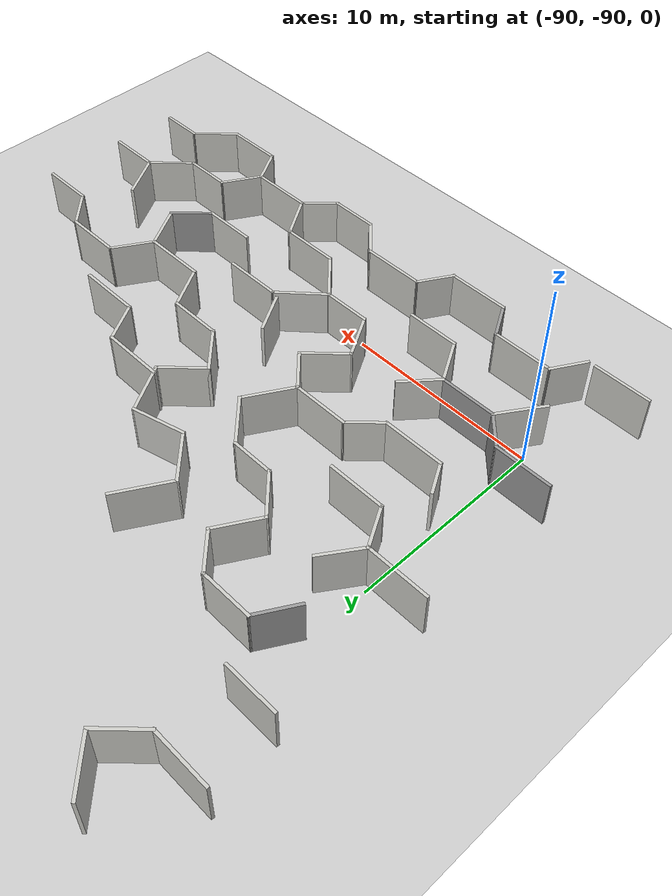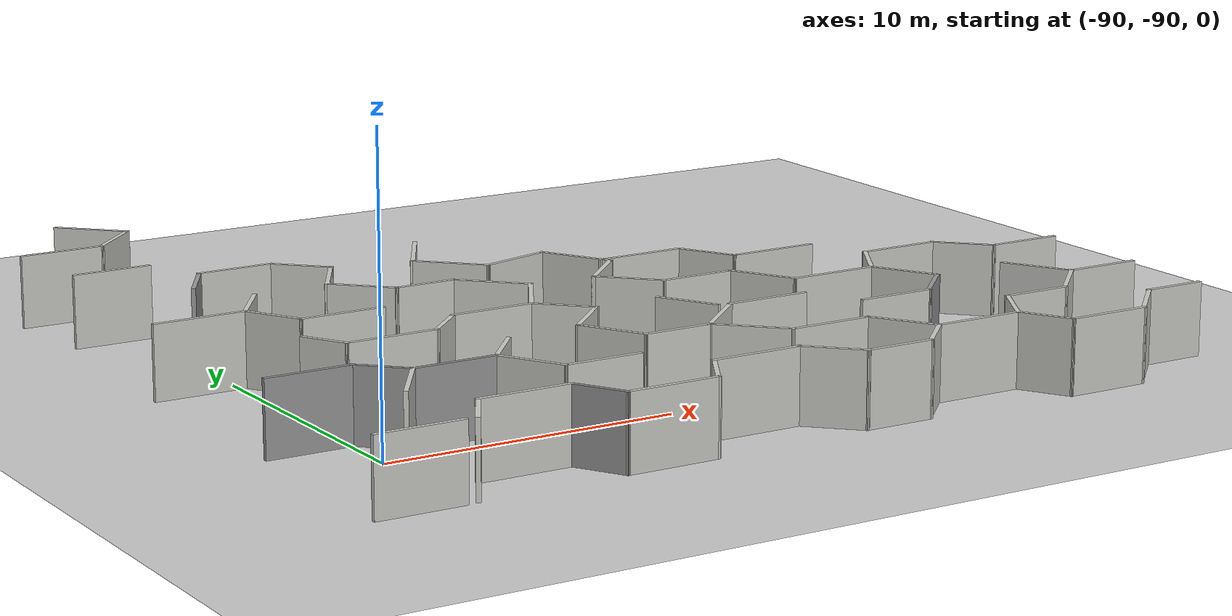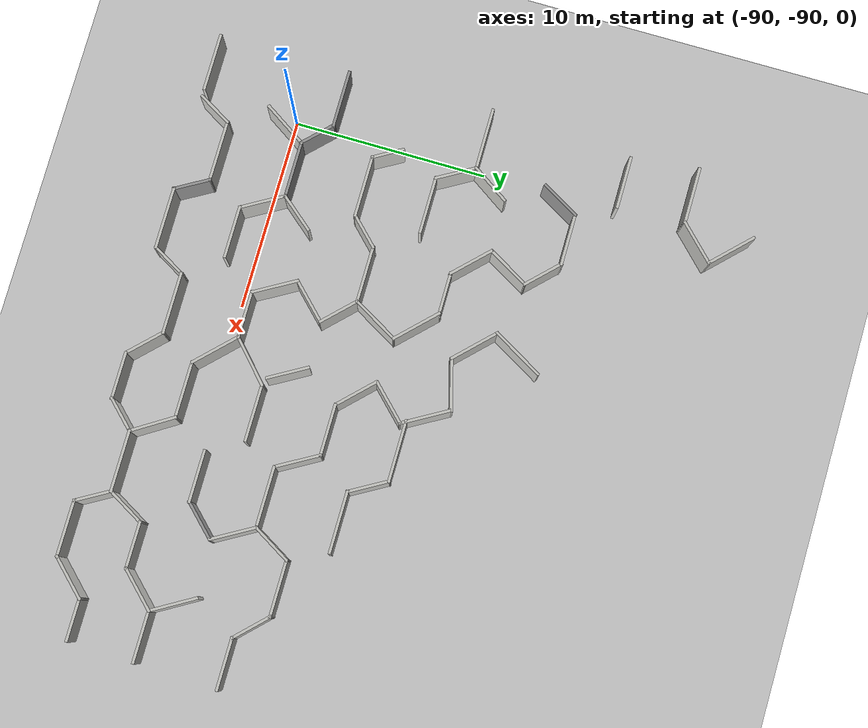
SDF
<sdf version="1.6">
 <world name="default">
  <model name="ground_plane">
   <pose>50 50 0 0 -0 0</pose>
   <static>1</static>
   <link name="link">
    <collision name="collision">
     <geometry><plane><normal>0 0 1</normal><size>100 100</size></plane></geometry>
     <surface><friction><ode><mu>100</mu><mu2>50</mu2></ode></friction></surface>
    </collision>
    <visual name="visual">
     <cast_shadows>0</cast_shadows>
     <geometry><plane><normal>0 0 1</normal><size>100 100</size></plane></geometry>
     <material>
      <script><uri>file://media/materials/scripts/gazebo.material</uri><name>Gazebo/Grey</name></script>
     </material>
    </visual>
   </link>
  </model>
  <model name="maze_1">
   <pose>-54.4916 -79.5001 0 0 -0 0</pose>
   <link name="Wall_100">
    <collision name="Wall_100_Collision">
     <geometry><box><size>2.75 0.15 2.5</size></box></geometry>
     <pose>0 0 1.25 0 -0 0</pose>
    </collision>
    <visual name="Wall_100_Visual">
     <pose>0 0 1.25 0 -0 0</pose>
     <geometry><box><size>2.75 0.15 2.5</size></box></geometry>
     <material>
      <script><uri>file://media/materials/scripts/gazebo.material</uri><name>Gazebo/CeilingTiled</name></script>
      <ambient>1 1 1 1</ambient>
     </material>
     <meta><layer>0</layer></meta>
    </visual>
    <pose>-22.8053 -10.8644 0 0 -0 -0.785398</pose>
   </link>
   <link name="Wall_101">
    <collision name="Wall_101_Collision">
     <geometry><box><size>3 0.15 2.5</size></box></geometry>
     <pose>0 0 1.25 0 -0 0</pose>
    </collision>
    <visual name="Wall_101_Visual">
     <pose>0 0 1.25 0 -0 0</pose>
     <geometry><box><size>3 0.15 2.5</size></box></geometry>
     <material>
      <script><uri>file://media/materials/scripts/gazebo.material</uri><name>Gazebo/CeilingTiled</name></script>
      <ambient>1 1 1 1</ambient>
     </material>
     <meta><layer>0</layer></meta>
    </visual>
    <pose>-20.4611 -11.7836 0 0 -0 0</pose>
   </link>
   <link name="Wall_102">
    <collision name="Wall_102_Collision">
     <geometry><box><size>2.50433 0.15 2.5</size></box></geometry>
     <pose>0 0 1.25 0 -0 0</pose>
    </collision>
    <visual name="Wall_102_Visual">
     <pose>0 0 1.25 0 -0 0</pose>
     <geometry><box><size>2.50433 0.15 2.5</size></box></geometry>
     <material>
      <script><uri>file://media/materials/scripts/gazebo.material</uri><name>Gazebo/CeilingTiled</name></script>
      <ambient>1 1 1 1</ambient>
     </material>
     <meta><layer>0</layer></meta>
    </visual>
    <pose>-18.4056 -12.7777 0 0 -0 -1.00558</pose>
   </link>
   <link name="Wall_104">
    <collision name="Wall_104_Collision">
     <geometry><box><size>3 0.15 2.5</size></box></geometry>
     <pose>0 0 1.25 0 -0 0</pose>
    </collision>
    <visual name="Wall_104_Visual">
     <pose>0 0 1.25 0 -0 0</pose>
     <geometry><box><size>3 0.15 2.5</size></box></geometry>
     <material>
      <script><uri>file://media/materials/scripts/gazebo.material</uri><name>Gazebo/CeilingTiled</name></script>
      <ambient>1 1 1 1</ambient>
     </material>
     <meta><layer>0</layer></meta>
    </visual>
    <pose>-20.321 -8.13238 0 0 -0 3.14159</pose>
   </link>
   <link name="Wall_105">
    <collision name="Wall_105_Collision">
     <geometry><box><size>2.83342 0.15 2.5</size></box></geometry>
     <pose>0 0 1.25 0 -0 0</pose>
    </collision>
    <visual name="Wall_105_Visual">
     <pose>0 0 1.25 0 -0 0</pose>
     <geometry><box><size>2.83342 0.15 2.5</size></box></geometry>
     <material>
      <script><uri>file://media/materials/scripts/gazebo.material</uri><name>Gazebo/CeilingTiled</name></script>
      <ambient>1 1 1 1</ambient>
     </material>
     <meta><layer>0</layer></meta>
    </visual>
    <pose>-22.7353 -9.03876 0 0 -0 -2.39989</pose>
   </link>
   <link name="Wall_107">
    <collision name="Wall_107_Collision">
     <geometry><box><size>2.25 0.15 2.5</size></box></geometry>
     <pose>0 0 1.25 0 -0 0</pose>
    </collision>
    <visual name="Wall_107_Visual">
     <pose>0 0 1.25 0 -0 0</pose>
     <geometry><box><size>2.25 0.15 2.5</size></box></geometry>
     <material>
      <script><uri>file://media/materials/scripts/gazebo.material</uri><name>Gazebo/CeilingTiled</name></script>
      <ambient>1 1 1 1</ambient>
     </material>
     <meta><layer>0</layer></meta>
    </visual>
    <pose>-22.6837 -7.08881 0 0 -0 -1.0472</pose>
   </link>
   <link name="Wall_109">
    <collision name="Wall_109_Collision">
     <geometry><box><size>2.75 0.15 2.5</size></box></geometry>
     <pose>0 0 1.25 0 -0 0</pose>
    </collision>
    <visual name="Wall_109_Visual">
     <pose>0 0 1.25 0 -0 0</pose>
     <geometry><box><size>2.75 0.15 2.5</size></box></geometry>
     <material>
      <script><uri>file://media/materials/scripts/gazebo.material</uri><name>Gazebo/CeilingTiled</name></script>
      <ambient>1 1 1 1</ambient>
     </material>
     <meta><layer>0</layer></meta>
    </visual>
    <pose>-16.5382 -9.92253 0 0 -0 0</pose>
   </link>
   <link name="Wall_110">
    <collision name="Wall_110_Collision">
     <geometry><box><size>2.25 0.15 2.5</size></box></geometry>
     <pose>0 0 1.25 0 -0 0</pose>
    </collision>
    <visual name="Wall_110_Visual">
     <pose>0 0 1.25 0 -0 0</pose>
     <geometry><box><size>2.25 0.15 2.5</size></box></geometry>
     <material>
      <script><uri>file://media/materials/scripts/gazebo.material</uri><name>Gazebo/Grey</name></script>
      <ambient>1 1 1 1</ambient>
     </material>
     <meta><layer>0</layer></meta>
    </visual>
    <pose>-14.4957 -9.18007 0 0 -0 0.785398</pose>
   </link>
   <link name="Wall_111">
    <collision name="Wall_111_Collision">
     <geometry><box><size>2.5 0.15 2.5</size></box></geometry>
     <pose>0 0 1.25 0 -0 0</pose>
    </collision>
    <visual name="Wall_111_Visual">
     <pose>0 0 1.25 0 -0 0</pose>
     <geometry><box><size>2.5 0.15 2.5</size></box></geometry>
     <material>
      <script><uri>file://media/materials/scripts/gazebo.material</uri><name>Gazebo/CeilingTiled</name></script>
      <ambient>1 1 1 1</ambient>
     </material>
     <meta><layer>0</layer></meta>
    </visual>
    <pose>-14.3408 -7.42003 0 0 -0 2.0944</pose>
   </link>
   <link name="Wall_112">
    <collision name="Wall_112_Collision">
     <geometry><box><size>3.25 0.15 2.5</size></box></geometry>
     <pose>0 0 1.25 0 -0 0</pose>
    </collision>
    <visual name="Wall_112_Visual">
     <pose>0 0 1.25 0 -0 0</pose>
     <geometry><box><size>3.25 0.15 2.5</size></box></geometry>
     <material>
      <script><uri>file://media/materials/scripts/gazebo.material</uri><name>Gazebo/CeilingTiled</name></script>
      <ambient>1 1 1 1</ambient>
     </material>
     <meta><layer>0</layer></meta>
    </visual>
    <pose>-16.4783 -6.40245 0 0 -0 3.14159</pose>
   </link>
   <link name="Wall_113">
    <collision name="Wall_113_Collision">
     <geometry><box><size>2.5 0.15 2.5</size></box></geometry>
     <pose>0 0 1.25 0 -0 0</pose>
    </collision>
    <visual name="Wall_113_Visual">
     <pose>0 0 1.25 0 -0 0</pose>
     <geometry><box><size>2.5 0.15 2.5</size></box></geometry>
     <material>
      <script><uri>file://media/materials/scripts/gazebo.material</uri><name>Gazebo/CeilingTiled</name></script>
      <ambient>1 1 1 1</ambient>
     </material>
     <meta><layer>0</layer></meta>
    </visual>
    <pose>-18.6158 -5.38487 0 0 -0 2.0944</pose>
   </link>
   <link name="Wall_114">
    <collision name="Wall_114_Collision">
     <geometry><box><size>2.75 0.15 2.5</size></box></geometry>
     <pose>0 0 1.25 0 -0 0</pose>
    </collision>
    <visual name="Wall_114_Visual">
     <pose>0 0 1.25 0 -0 0</pose>
     <geometry><box><size>2.75 0.15 2.5</size></box></geometry>
     <material>
      <script><uri>file://media/materials/scripts/gazebo.material</uri><name>Gazebo/CeilingTiled</name></script>
      <ambient>1 1 1 1</ambient>
     </material>
     <meta><layer>0</layer></meta>
    </visual>
    <pose>-20.5033 -4.36729 0 0 -0 3.14159</pose>
   </link>
   <link name="Wall_115">
    <collision name="Wall_115_Collision">
     <geometry><box><size>2.5 0.15 2.5</size></box></geometry>
     <pose>0 0 1.25 0 -0 0</pose>
    </collision>
    <visual name="Wall_115_Visual">
     <pose>0 0 1.25 0 -0 0</pose>
     <geometry><box><size>2.5 0.15 2.5</size></box></geometry>
     <material>
      <script><uri>file://media/materials/scripts/gazebo.material</uri><name>Gazebo/CeilingTiled</name></script>
      <ambient>1 1 1 1</ambient>
     </material>
     <meta><layer>0</layer></meta>
    </visual>
    <pose>-22.6341 -3.53644 0 0 -0 2.35619</pose>
   </link>
   <link name="Wall_116">
    <collision name="Wall_116_Collision">
     <geometry><box><size>2.5 0.15 2.5</size></box></geometry>
     <pose>0 0 1.25 0 -0 0</pose>
    </collision>
    <visual name="Wall_116_Visual">
     <pose>0 0 1.25 0 -0 0</pose>
     <geometry><box><size>2.5 0.15 2.5</size></box></geometry>
     <material>
      <script><uri>file://media/materials/scripts/gazebo.material</uri><name>Gazebo/CeilingTiled</name></script>
      <ambient>1 1 1 1</ambient>
     </material>
     <meta><layer>0</layer></meta>
    </visual>
    <pose>-22.6341 -1.87474 0 0 -0 0.785398</pose>
   </link>
   <link name="Wall_117">
    <collision name="Wall_117_Collision">
     <geometry><box><size>2.75 0.15 2.5</size></box></geometry>
     <pose>0 0 1.25 0 -0 0</pose>
    </collision>
    <visual name="Wall_117_Visual">
     <pose>0 0 1.25 0 -0 0</pose>
     <geometry><box><size>2.75 0.15 2.5</size></box></geometry>
     <material>
      <script><uri>file://media/materials/scripts/gazebo.material</uri><name>Gazebo/CeilingTiled</name></script>
      <ambient>1 1 1 1</ambient>
     </material>
     <meta><layer>0</layer></meta>
    </visual>
    <pose>-22.4533 0.081949 0 0 -0 2.0944</pose>
   </link>
   <link name="Wall_118">
    <collision name="Wall_118_Collision">
     <geometry><box><size>2.75 0.15 2.5</size></box></geometry>
     <pose>0 0 1.25 0 -0 0</pose>
    </collision>
    <visual name="Wall_118_Visual">
     <pose>0 0 1.25 0 -0 0</pose>
     <geometry><box><size>2.75 0.15 2.5</size></box></geometry>
     <material>
      <script><uri>file://media/materials/scripts/gazebo.material</uri><name>Gazebo/CeilingTiled</name></script>
      <ambient>1 1 1 1</ambient>
     </material>
     <meta><layer>0</layer></meta>
    </visual>
    <pose>-24.359 0.871317 0 0 -0 -2.87979</pose>
   </link>
   <link name="Wall_119">
    <collision name="Wall_119_Collision">
     <geometry><box><size>2.75 0.15 2.5</size></box></geometry>
     <pose>0 0 1.25 0 -0 0</pose>
    </collision>
    <visual name="Wall_119_Visual">
     <pose>0 0 1.25 0 -0 0</pose>
     <geometry><box><size>2.75 0.15 2.5</size></box></geometry>
     <material>
      <script><uri>file://media/materials/scripts/gazebo.material</uri><name>Gazebo/CeilingTiled</name></script>
      <ambient>1 1 1 1</ambient>
     </material>
     <meta><layer>0</layer></meta>
    </visual>
    <pose>-26.5339 1.45409 0 0 -0 2.35619</pose>
   </link>
   <link name="Wall_120">
    <collision name="Wall_120_Collision">
     <geometry><box><size>3 0.15 2.5</size></box></geometry>
     <pose>0 0 1.25 0 -0 0</pose>
    </collision>
    <visual name="Wall_120_Visual">
     <pose>0 0 1.25 0 -0 0</pose>
     <geometry><box><size>3 0.15 2.5</size></box></geometry>
     <material>
      <script><uri>file://media/materials/scripts/gazebo.material</uri><name>Gazebo/CeilingTiled</name></script>
      <ambient>1 1 1 1</ambient>
     </material>
     <meta><layer>0</layer></meta>
    </visual>
    <pose>-26.7407 3.60742 0 0 -0 1.0472</pose>
   </link>
   <link name="Wall_122">
    <collision name="Wall_122_Collision">
     <geometry><box><size>3.25 0.15 2.5</size></box></geometry>
     <pose>0 0 1.25 0 -0 0</pose>
    </collision>
    <visual name="Wall_122_Visual">
     <pose>0 0 1.25 0 -0 0</pose>
     <geometry><box><size>3.25 0.15 2.5</size></box></geometry>
     <material>
      <script><uri>file://media/materials/scripts/gazebo.material</uri><name>Gazebo/CeilingTiled</name></script>
      <ambient>1 1 1 1</ambient>
     </material>
     <meta><layer>0</layer></meta>
    </visual>
    <pose>-16.2961 -2.59917 0 0 -0 3.14159</pose>
   </link>
   <link name="Wall_123">
    <collision name="Wall_123_Collision">
     <geometry><box><size>2.25 0.15 2.5</size></box></geometry>
     <pose>0 0 1.25 0 -0 0</pose>
    </collision>
    <visual name="Wall_123_Visual">
     <pose>0 0 1.25 0 -0 0</pose>
     <geometry><box><size>2.25 0.15 2.5</size></box></geometry>
     <material>
      <script><uri>file://media/materials/scripts/gazebo.material</uri><name>Gazebo/CeilingTiled</name></script>
      <ambient>1 1 1 1</ambient>
     </material>
     <meta><layer>0</layer></meta>
    </visual>
    <pose>-18.3711 -1.68985 0 0 -0 2.0944</pose>
   </link>
   <link name="Wall_124">
    <collision name="Wall_124_Collision">
     <geometry><box><size>3.25 0.15 2.5</size></box></geometry>
     <pose>0 0 1.25 0 -0 0</pose>
    </collision>
    <visual name="Wall_124_Visual">
     <pose>0 0 1.25 0 -0 0</pose>
     <geometry><box><size>3.25 0.15 2.5</size></box></geometry>
     <material>
      <script><uri>file://media/materials/scripts/gazebo.material</uri><name>Gazebo/CeilingTiled</name></script>
      <ambient>1 1 1 1</ambient>
     </material>
     <meta><layer>0</layer></meta>
    </visual>
    <pose>-20.4461 -0.780521 0 0 -0 3.14159</pose>
   </link>
   <link name="Wall_130">
    <collision name="Wall_130_Collision">
     <geometry><box><size>2.75 0.15 2.5</size></box></geometry>
     <pose>0 0 1.25 0 -0 0</pose>
    </collision>
    <visual name="Wall_130_Visual">
     <pose>0 0 1.25 0 -0 0</pose>
     <geometry><box><size>2.75 0.15 2.5</size></box></geometry>
     <material>
      <script><uri>file://media/materials/scripts/gazebo.material</uri><name>Gazebo/CeilingTiled</name></script>
      <ambient>1 1 1 1</ambient>
     </material>
     <meta><layer>0</layer></meta>
    </visual>
    <pose>-8.17192 -6.00916 0 0 -0 3.14159</pose>
   </link>
   <link name="Wall_131">
    <collision name="Wall_131_Collision">
     <geometry><box><size>2.25 0.15 2.5</size></box></geometry>
     <pose>0 0 1.25 0 -0 0</pose>
    </collision>
    <visual name="Wall_131_Visual">
     <pose>0 0 1.25 0 -0 0</pose>
     <geometry><box><size>2.25 0.15 2.5</size></box></geometry>
     <material>
      <script><uri>file://media/materials/scripts/gazebo.material</uri><name>Gazebo/CeilingTiled</name></script>
      <ambient>1 1 1 1</ambient>
     </material>
     <meta><layer>0</layer></meta>
    </visual>
    <pose>-10.2144 -5.2667 0 0 -0 2.35619</pose>
   </link>
   <link name="Wall_132">
    <collision name="Wall_132_Collision">
     <geometry><box><size>3 0.15 2.5</size></box></geometry>
     <pose>0 0 1.25 0 -0 0</pose>
    </collision>
    <visual name="Wall_132_Visual">
     <pose>0 0 1.25 0 -0 0</pose>
     <geometry><box><size>3 0.15 2.5</size></box></geometry>
     <material>
      <script><uri>file://media/materials/scripts/gazebo.material</uri><name>Gazebo/CeilingTiled</name></script>
      <ambient>1 1 1 1</ambient>
     </material>
     <meta><layer>0</layer></meta>
    </visual>
    <pose>-12.3818 -4.52424 0 0 -0 3.14159</pose>
   </link>
   <link name="Wall_133">
    <collision name="Wall_133_Collision">
     <geometry><box><size>2.33753 0.15 2.5</size></box></geometry>
     <pose>0 0 1.25 0 -0 0</pose>
    </collision>
    <visual name="Wall_133_Visual">
     <pose>0 0 1.25 0 -0 0</pose>
     <geometry><box><size>2.33753 0.15 2.5</size></box></geometry>
     <material>
      <script><uri>file://media/materials/scripts/gazebo.material</uri><name>Gazebo/CeilingTiled</name></script>
      <ambient>1 1 1 1</ambient>
     </material>
     <meta><layer>0</layer></meta>
    </visual>
    <pose>-14.3676 -5.46334 0 0 -0 -2.10906</pose>
   </link>
   <link name="Wall_23">
    <collision name="Wall_23_Collision">
     <geometry><box><size>2.25 0.15 2.5</size></box></geometry>
     <pose>0 0 1.25 0 -0 0</pose>
    </collision>
    <visual name="Wall_23_Visual">
     <pose>0 0 1.25 0 -0 0</pose>
     <geometry><box><size>2.25 0.15 2.5</size></box></geometry>
     <material>
      <script><uri>file://media/materials/scripts/gazebo.material</uri><name>Gazebo/CeilingTiled</name></script>
      <ambient>1 1 1 1</ambient>
     </material>
     <meta><layer>0</layer></meta>
    </visual>
    <pose>-8.18841 -13.7122 0 0 -0 3.14159</pose>
   </link>
   <link name="Wall_24">
    <collision name="Wall_24_Collision">
     <geometry><box><size>2.5 0.15 2.5</size></box></geometry>
     <pose>0 0 1.25 0 -0 0</pose>
    </collision>
    <visual name="Wall_24_Visual">
     <pose>0 0 1.25 0 -0 0</pose>
     <geometry><box><size>2.5 0.15 2.5</size></box></geometry>
     <material>
      <script><uri>file://media/materials/scripts/gazebo.material</uri><name>Gazebo/CeilingTiled</name></script>
      <ambient>1 1 1 1</ambient>
     </material>
     <meta><layer>0</layer></meta>
    </visual>
    <pose>-10.0693 -14.5431 0 0 -0 -2.35619</pose>
   </link>
   <link name="Wall_25">
    <collision name="Wall_25_Collision">
     <geometry><box><size>3 0.15 2.5</size></box></geometry>
     <pose>0 0 1.25 0 -0 0</pose>
    </collision>
    <visual name="Wall_25_Visual">
     <pose>0 0 1.25 0 -0 0</pose>
     <geometry><box><size>3 0.15 2.5</size></box></geometry>
     <material>
      <script><uri>file://media/materials/scripts/gazebo.material</uri><name>Gazebo/CeilingTiled</name></script>
      <ambient>1 1 1 1</ambient>
     </material>
     <meta><layer>0</layer></meta>
    </visual>
    <pose>-12.3251 -15.3739 0 0 -0 3.14159</pose>
   </link>
   <link name="Wall_26">
    <collision name="Wall_26_Collision">
     <geometry><box><size>2 0.15 2.5</size></box></geometry>
     <pose>0 0 1.25 0 -0 0</pose>
    </collision>
    <visual name="Wall_26_Visual">
     <pose>0 0 1.25 0 -0 0</pose>
     <geometry><box><size>2 0.15 2.5</size></box></geometry>
     <material>
      <script><uri>file://media/materials/scripts/gazebo.material</uri><name>Gazebo/CeilingTiled</name></script>
      <ambient>1 1 1 1</ambient>
     </material>
     <meta><layer>0</layer></meta>
    </visual>
    <pose>-14.2126 -14.5729 0 0 -0 2.0944</pose>
   </link>
   <link name="Wall_27">
    <collision name="Wall_27_Collision">
     <geometry><box><size>2.25 0.15 2.5</size></box></geometry>
     <pose>0 0 1.25 0 -0 0</pose>
    </collision>
    <visual name="Wall_27_Visual">
     <pose>0 0 1.25 0 -0 0</pose>
     <geometry><box><size>2.25 0.15 2.5</size></box></geometry>
     <material>
      <script><uri>file://media/materials/scripts/gazebo.material</uri><name>Gazebo/CeilingTiled</name></script>
      <ambient>1 1 1 1</ambient>
     </material>
     <meta><layer>0</layer></meta>
    </visual>
    <pose>-14.1501 -12.8625 0 0 -0 1.0472</pose>
   </link>
   <link name="Wall_28">
    <collision name="Wall_28_Collision">
     <geometry><box><size>2.5 0.15 2.5</size></box></geometry>
     <pose>0 0 1.25 0 -0 0</pose>
    </collision>
    <visual name="Wall_28_Visual">
     <pose>0 0 1.25 0 -0 0</pose>
     <geometry><box><size>2.5 0.15 2.5</size></box></geometry>
     <material>
      <script><uri>file://media/materials/scripts/gazebo.material</uri><name>Gazebo/CeilingTiled</name></script>
      <ambient>1 1 1 1</ambient>
     </material>
     <meta><layer>0</layer></meta>
    </visual>
    <pose>-12.4501 -11.9531 0 0 -0 0</pose>
   </link>
   <link name="Wall_29">
    <collision name="Wall_29_Collision">
     <geometry><box><size>2.5 0.15 2.5</size></box></geometry>
     <pose>0 0 1.25 0 -0 0</pose>
    </collision>
    <visual name="Wall_29_Visual">
     <pose>0 0 1.25 0 -0 0</pose>
     <geometry><box><size>2.5 0.15 2.5</size></box></geometry>
     <material>
      <script><uri>file://media/materials/scripts/gazebo.material</uri><name>Gazebo/CeilingTiled</name></script>
      <ambient>1 1 1 1</ambient>
     </material>
     <meta><layer>0</layer></meta>
    </visual>
    <pose>-10.4443 -11.1223 0 0 -0 0.785398</pose>
   </link>
   <link name="Wall_30">
    <collision name="Wall_30_Collision">
     <geometry><box><size>2.75 0.15 2.5</size></box></geometry>
     <pose>0 0 1.25 0 -0 0</pose>
    </collision>
    <visual name="Wall_30_Visual">
     <pose>0 0 1.25 0 -0 0</pose>
     <geometry><box><size>2.75 0.15 2.5</size></box></geometry>
     <material>
      <script><uri>file://media/materials/scripts/gazebo.material</uri><name>Gazebo/CeilingTiled</name></script>
      <ambient>1 1 1 1</ambient>
     </material>
     <meta><layer>0</layer></meta>
    </visual>
    <pose>-8.31341 -10.2914 0 0 -0 0</pose>
   </link>
   <link name="Wall_33">
    <collision name="Wall_33_Collision">
     <geometry><box><size>2.56291 0.15 2.5</size></box></geometry>
     <pose>0 0 1.25 0 -0 0</pose>
    </collision>
    <visual name="Wall_33_Visual">
     <pose>0 0 1.25 0 -0 0</pose>
     <geometry><box><size>2.56291 0.15 2.5</size></box></geometry>
     <material>
      <script><uri>file://media/materials/scripts/gazebo.material</uri><name>Gazebo/CeilingTiled</name></script>
      <ambient>1 1 1 1</ambient>
     </material>
     <meta><layer>0</layer></meta>
    </visual>
    <pose>-10.2269 -9.25259 0 0 -0 -1.03738</pose>
   </link>
   <link name="Wall_35">
    <collision name="Wall_35_Collision">
     <geometry><box><size>3.25 0.15 2.5</size></box></geometry>
     <pose>0 0 1.25 0 -0 0</pose>
    </collision>
    <visual name="Wall_35_Visual">
     <pose>0 0 1.25 0 -0 0</pose>
     <geometry><box><size>3.25 0.15 2.5</size></box></geometry>
     <material>
      <script><uri>file://media/materials/scripts/gazebo.material</uri><name>Gazebo/CeilingTiled</name></script>
      <ambient>1 1 1 1</ambient>
     </material>
     <meta><layer>0</layer></meta>
    </visual>
    <pose>-16.2251 -13.7718 0 0 -0 3.14159</pose>
   </link>
   <link name="Wall_36">
    <collision name="Wall_36_Collision">
     <geometry><box><size>2 0.15 2.5</size></box></geometry>
     <pose>0 0 1.25 0 -0 0</pose>
    </collision>
    <visual name="Wall_36_Visual">
     <pose>0 0 1.25 0 -0 0</pose>
     <geometry><box><size>2 0.15 2.5</size></box></geometry>
     <material>
      <script><uri>file://media/materials/scripts/gazebo.material</uri><name>Gazebo/CeilingTiled</name></script>
      <ambient>1 1 1 1</ambient>
     </material>
     <meta><layer>0</layer></meta>
    </visual>
    <pose>-18.4292 -14.4259 0 0 -0 -2.35619</pose>
   </link>
   <link name="Wall_37">
    <collision name="Wall_37_Collision">
     <geometry><box><size>2.5 0.15 2.5</size></box></geometry>
     <pose>0 0 1.25 0 -0 0</pose>
    </collision>
    <visual name="Wall_37_Visual">
     <pose>0 0 1.25 0 -0 0</pose>
     <geometry><box><size>2.5 0.15 2.5</size></box></geometry>
     <material>
      <script><uri>file://media/materials/scripts/gazebo.material</uri><name>Gazebo/CeilingTiled</name></script>
      <ambient>1 1 1 1</ambient>
     </material>
     <meta><layer>0</layer></meta>
    </visual>
    <pose>-20.2583 -15.0799 0 0 -0 3.14159</pose>
   </link>
   <link name="Wall_38">
    <collision name="Wall_38_Collision">
     <geometry><box><size>2.25 0.15 2.5</size></box></geometry>
     <pose>0 0 1.25 0 -0 0</pose>
    </collision>
    <visual name="Wall_38_Visual">
     <pose>0 0 1.25 0 -0 0</pose>
     <geometry><box><size>2.25 0.15 2.5</size></box></geometry>
     <material>
      <script><uri>file://media/materials/scripts/gazebo.material</uri><name>Gazebo/CeilingTiled</name></script>
      <ambient>1 1 1 1</ambient>
     </material>
     <meta><layer>0</layer></meta>
    </visual>
    <pose>-22.1757 -14.3375 0 0 -0 2.35619</pose>
   </link>
   <link name="Wall_39">
    <collision name="Wall_39_Collision">
     <geometry><box><size>3.25 0.15 2.5</size></box></geometry>
     <pose>0 0 1.25 0 -0 0</pose>
    </collision>
    <visual name="Wall_39_Visual">
     <pose>0 0 1.25 0 -0 0</pose>
     <geometry><box><size>3.25 0.15 2.5</size></box></geometry>
     <material>
      <script><uri>file://media/materials/scripts/gazebo.material</uri><name>Gazebo/CeilingTiled</name></script>
      <ambient>1 1 1 1</ambient>
     </material>
     <meta><layer>0</layer></meta>
    </visual>
    <pose>-24.4682 -13.595 0 0 -0 3.14159</pose>
   </link>
   <link name="Wall_40">
    <collision name="Wall_40_Collision">
     <geometry><box><size>2 0.15 2.5</size></box></geometry>
     <pose>0 0 1.25 0 -0 0</pose>
    </collision>
    <visual name="Wall_40_Visual">
     <pose>0 0 1.25 0 -0 0</pose>
     <geometry><box><size>2 0.15 2.5</size></box></geometry>
     <material>
      <script><uri>file://media/materials/scripts/gazebo.material</uri><name>Gazebo/CeilingTiled</name></script>
      <ambient>1 1 1 1</ambient>
     </material>
     <meta><layer>0</layer></meta>
    </visual>
    <pose>-26.4807 -14.3961 0 0 -0 -2.0944</pose>
   </link>
   <link name="Wall_41">
    <collision name="Wall_41_Collision">
     <geometry><box><size>3.25 0.15 2.5</size></box></geometry>
     <pose>0 0 1.25 0 -0 0</pose>
    </collision>
    <visual name="Wall_41_Visual">
     <pose>0 0 1.25 0 -0 0</pose>
     <geometry><box><size>3.25 0.15 2.5</size></box></geometry>
     <material>
      <script><uri>file://media/materials/scripts/gazebo.material</uri><name>Gazebo/CeilingTiled</name></script>
      <ambient>1 1 1 1</ambient>
     </material>
     <meta><layer>0</layer></meta>
    </visual>
    <pose>-28.4932 -15.1972 0 0 -0 3.14159</pose>
   </link>
   <link name="Wall_42">
    <collision name="Wall_42_Collision">
     <geometry><box><size>2 0.15 2.5</size></box></geometry>
     <pose>0 0 1.25 0 -0 0</pose>
    </collision>
    <visual name="Wall_42_Visual">
     <pose>0 0 1.25 0 -0 0</pose>
     <geometry><box><size>2 0.15 2.5</size></box></geometry>
     <material>
      <script><uri>file://media/materials/scripts/gazebo.material</uri><name>Gazebo/Grey</name></script>
      <ambient>1 1 1 1</ambient>
     </material>
     <meta><layer>0</layer></meta>
    </visual>
    <pose>-30.5057 -14.3961 0 0 -0 2.0944</pose>
   </link>
   <link name="Wall_43">
    <collision name="Wall_43_Collision">
     <geometry><box><size>3.25 0.15 2.5</size></box></geometry>
     <pose>0 0 1.25 0 -0 0</pose>
    </collision>
    <visual name="Wall_43_Visual">
     <pose>0 0 1.25 0 -0 0</pose>
     <geometry><box><size>3.25 0.15 2.5</size></box></geometry>
     <material>
      <script><uri>file://media/materials/scripts/gazebo.material</uri><name>Gazebo/CeilingTiled</name></script>
      <ambient>1 1 1 1</ambient>
     </material>
     <meta><layer>0</layer></meta>
    </visual>
    <pose>-32.5182 -13.595 0 0 -0 3.14159</pose>
   </link>
   <link name="Wall_44">
    <collision name="Wall_44_Collision">
     <geometry><box><size>2 0.15 2.5</size></box></geometry>
     <pose>0 0 1.25 0 -0 0</pose>
    </collision>
    <visual name="Wall_44_Visual">
     <pose>0 0 1.25 0 -0 0</pose>
     <geometry><box><size>2 0.15 2.5</size></box></geometry>
     <material>
      <script><uri>file://media/materials/scripts/gazebo.material</uri><name>Gazebo/CeilingTiled</name></script>
      <ambient>1 1 1 1</ambient>
     </material>
     <meta><layer>0</layer></meta>
    </visual>
    <pose>-34.5307 -14.3961 0 0 -0 -2.0944</pose>
   </link>
   <link name="Wall_46">
    <collision name="Wall_46_Collision">
     <geometry><box><size>3 0.15 2.5</size></box></geometry>
     <pose>0 0 1.25 0 -0 0</pose>
    </collision>
    <visual name="Wall_46_Visual">
     <pose>0 0 1.25 0 -0 0</pose>
     <geometry><box><size>3 0.15 2.5</size></box></geometry>
     <material>
      <script><uri>file://media/materials/scripts/gazebo.material</uri><name>Gazebo/CeilingTiled</name></script>
      <ambient>1 1 1 1</ambient>
     </material>
     <meta><layer>0</layer></meta>
    </visual>
    <pose>-36.8393 -15.2116 0 0 -0 3.14159</pose>
   </link>
   <link name="Wall_51">
    <collision name="Wall_51_Collision">
     <geometry><box><size>3 0.15 2.5</size></box></geometry>
     <pose>0 0 1.25 0 -0 0</pose>
    </collision>
    <visual name="Wall_51_Visual">
     <pose>0 0 1.25 0 -0 0</pose>
     <geometry><box><size>3 0.15 2.5</size></box></geometry>
     <material>
      <script><uri>file://media/materials/scripts/gazebo.material</uri><name>Gazebo/Grey</name></script>
      <ambient>1 1 1 1</ambient>
     </material>
     <meta><layer>0</layer></meta>
    </visual>
    <pose>-36.7956 -8.40778 0 0 -0 0</pose>
   </link>
   <link name="Wall_52">
    <collision name="Wall_52_Collision">
     <geometry><box><size>2 0.15 2.5</size></box></geometry>
     <pose>0 0 1.25 0 -0 0</pose>
    </collision>
    <visual name="Wall_52_Visual">
     <pose>0 0 1.25 0 -0 0</pose>
     <geometry><box><size>2 0.15 2.5</size></box></geometry>
     <material>
      <script><uri>file://media/materials/scripts/gazebo.material</uri><name>Gazebo/Grey</name></script>
      <ambient>1 1 1 1</ambient>
     </material>
     <meta><layer>0</layer></meta>
    </visual>
    <pose>-34.7166 -9.06186 0 0 -0 -0.785398</pose>
   </link>
   <link name="Wall_53">
    <collision name="Wall_53_Collision">
     <geometry><box><size>3 0.15 2.5</size></box></geometry>
     <pose>0 0 1.25 0 -0 0</pose>
    </collision>
    <visual name="Wall_53_Visual">
     <pose>0 0 1.25 0 -0 0</pose>
     <geometry><box><size>3 0.15 2.5</size></box></geometry>
     <material>
      <script><uri>file://media/materials/scripts/gazebo.material</uri><name>Gazebo/Grey</name></script>
      <ambient>1 1 1 1</ambient>
     </material>
     <meta><layer>0</layer></meta>
    </visual>
    <pose>-32.6375 -9.71593 0 0 -0 0</pose>
   </link>
   <link name="Wall_54">
    <collision name="Wall_54_Collision">
     <geometry><box><size>2.5 0.15 2.5</size></box></geometry>
     <pose>0 0 1.25 0 -0 0</pose>
    </collision>
    <visual name="Wall_54_Visual">
     <pose>0 0 1.25 0 -0 0</pose>
     <geometry><box><size>2.5 0.15 2.5</size></box></geometry>
     <material>
      <script><uri>file://media/materials/scripts/gazebo.material</uri><name>Gazebo/CeilingTiled</name></script>
      <ambient>1 1 1 1</ambient>
     </material>
     <meta><layer>0</layer></meta>
    </visual>
    <pose>-30.625 -10.7335 0 0 -0 -1.0472</pose>
   </link>
   <link name="Wall_55">
    <collision name="Wall_55_Collision">
     <geometry><box><size>2.75 0.15 2.5</size></box></geometry>
     <pose>0 0 1.25 0 -0 0</pose>
    </collision>
    <visual name="Wall_55_Visual">
     <pose>0 0 1.25 0 -0 0</pose>
     <geometry><box><size>2.75 0.15 2.5</size></box></geometry>
     <material>
      <script><uri>file://media/materials/scripts/gazebo.material</uri><name>Gazebo/CeilingTiled</name></script>
      <ambient>1 1 1 1</ambient>
     </material>
     <meta><layer>0</layer></meta>
    </visual>
    <pose>-28.7375 -11.7511 0 0 -0 0</pose>
   </link>
   <link name="Wall_57">
    <collision name="Wall_57_Collision">
     <geometry><box><size>2.2189 0.15 2.5</size></box></geometry>
     <pose>0 0 1.25 0 -0 0</pose>
    </collision>
    <visual name="Wall_57_Visual">
     <pose>0 0 1.25 0 -0 0</pose>
     <geometry><box><size>2.2189 0.15 2.5</size></box></geometry>
     <material>
      <script><uri>file://media/materials/scripts/gazebo.material</uri><name>Gazebo/CeilingTiled</name></script>
      <ambient>1 1 1 1</ambient>
     </material>
     <meta><layer>0</layer></meta>
    </visual>
    <pose>-30.5468 -8.92415 0 0 -0 -2.26992</pose>
   </link>
   <link name="Wall_59">
    <collision name="Wall_59_Collision">
     <geometry><box><size>2.62909 0.15 2.5</size></box></geometry>
     <pose>0 0 1.25 0 -0 0</pose>
    </collision>
    <visual name="Wall_59_Visual">
     <pose>0 0 1.25 0 -0 0</pose>
     <geometry><box><size>2.62909 0.15 2.5</size></box></geometry>
     <material>
      <script><uri>file://media/materials/scripts/gazebo.material</uri><name>Gazebo/CeilingTiled</name></script>
      <ambient>1 1 1 1</ambient>
     </material>
     <meta><layer>0</layer></meta>
    </visual>
    <pose>-34.7384 -10.755 0 0 -0 0.994084</pose>
   </link>
   <link name="Wall_65">
    <collision name="Wall_65_Collision">
     <geometry><box><size>3.25 0.15 2.5</size></box></geometry>
     <pose>0 0 1.25 0 -0 0</pose>
    </collision>
    <visual name="Wall_65_Visual">
     <pose>0 0 1.25 0 -0 0</pose>
     <geometry><box><size>3.25 0.15 2.5</size></box></geometry>
     <material>
      <script><uri>file://media/materials/scripts/gazebo.material</uri><name>Gazebo/CeilingTiled</name></script>
      <ambient>1 1 1 1</ambient>
     </material>
     <meta><layer>0</layer></meta>
    </visual>
    <pose>-36.778 -0.893615 0 0 -0 0</pose>
   </link>
   <link name="Wall_66">
    <collision name="Wall_66_Collision">
     <geometry><box><size>2.25 0.15 2.5</size></box></geometry>
     <pose>0 0 1.25 0 -0 0</pose>
    </collision>
    <visual name="Wall_66_Visual">
     <pose>0 0 1.25 0 -0 0</pose>
     <geometry><box><size>2.25 0.15 2.5</size></box></geometry>
     <material>
      <script><uri>file://media/materials/scripts/gazebo.material</uri><name>Gazebo/CeilingTiled</name></script>
      <ambient>1 1 1 1</ambient>
     </material>
     <meta><layer>0</layer></meta>
    </visual>
    <pose>-34.703 -1.80294 0 0 -0 -1.0472</pose>
   </link>
   <link name="Wall_67">
    <collision name="Wall_67_Collision">
     <geometry><box><size>3 0.15 2.5</size></box></geometry>
     <pose>0 0 1.25 0 -0 0</pose>
    </collision>
    <visual name="Wall_67_Visual">
     <pose>0 0 1.25 0 -0 0</pose>
     <geometry><box><size>3 0.15 2.5</size></box></geometry>
     <material>
      <script><uri>file://media/materials/scripts/gazebo.material</uri><name>Gazebo/CeilingTiled</name></script>
      <ambient>1 1 1 1</ambient>
     </material>
     <meta><layer>0</layer></meta>
    </visual>
    <pose>-32.753 -2.71227 0 0 -0 0</pose>
   </link>
   <link name="Wall_69">
    <collision name="Wall_69_Collision">
     <geometry><box><size>2.3062 0.15 2.5</size></box></geometry>
     <pose>0 0 1.25 0 -0 0</pose>
    </collision>
    <visual name="Wall_69_Visual">
     <pose>0 0 1.25 0 -0 0</pose>
     <geometry><box><size>2.3062 0.15 2.5</size></box></geometry>
     <material>
      <script><uri>file://media/materials/scripts/gazebo.material</uri><name>Gazebo/CeilingTiled</name></script>
      <ambient>1 1 1 1</ambient>
     </material>
     <meta><layer>0</layer></meta>
    </visual>
    <pose>-34.6295 0.003073 0 0 -0 -2.15938</pose>
   </link>
   <link name="Wall_77">
    <collision name="Wall_77_Collision">
     <geometry><box><size>3 0.15 2.5</size></box></geometry>
     <pose>0 0 1.25 0 -0 0</pose>
    </collision>
    <visual name="Wall_77_Visual">
     <pose>0 0 1.25 0 -0 0</pose>
     <geometry><box><size>3 0.15 2.5</size></box></geometry>
     <material>
      <script><uri>file://media/materials/scripts/gazebo.material</uri><name>Gazebo/CeilingTiled</name></script>
      <ambient>1 1 1 1</ambient>
     </material>
     <meta><layer>0</layer></meta>
    </visual>
    <pose>-36.8431 9.90108 0 0 -0 0</pose>
   </link>
   <link name="Wall_78">
    <collision name="Wall_78_Collision">
     <geometry><box><size>2.5 0.15 2.5</size></box></geometry>
     <pose>0 0 1.25 0 -0 0</pose>
    </collision>
    <visual name="Wall_78_Visual">
     <pose>0 0 1.25 0 -0 0</pose>
     <geometry><box><size>2.5 0.15 2.5</size></box></geometry>
     <material>
      <script><uri>file://media/materials/scripts/gazebo.material</uri><name>Gazebo/CeilingTiled</name></script>
      <ambient>1 1 1 1</ambient>
     </material>
     <meta><layer>0</layer></meta>
    </visual>
    <pose>-34.5873 10.7319 0 0 -0 0.785398</pose>
   </link>
   <link name="Wall_79">
    <collision name="Wall_79_Collision">
     <geometry><box><size>2.75 0.15 2.5</size></box></geometry>
     <pose>0 0 1.25 0 -0 0</pose>
    </collision>
    <visual name="Wall_79_Visual">
     <pose>0 0 1.25 0 -0 0</pose>
     <geometry><box><size>2.75 0.15 2.5</size></box></geometry>
     <material>
      <script><uri>file://media/materials/scripts/gazebo.material</uri><name>Gazebo/CeilingTiled</name></script>
      <ambient>1 1 1 1</ambient>
     </material>
     <meta><layer>0</layer></meta>
    </visual>
    <pose>-34.6757 12.482 0 0 -0 2.35619</pose>
   </link>
   <link name="Wall_81">
    <collision name="Wall_81_Collision">
     <geometry><box><size>2.75 0.15 2.5</size></box></geometry>
     <pose>0 0 1.25 0 -0 0</pose>
    </collision>
    <visual name="Wall_81_Visual">
     <pose>0 0 1.25 0 -0 0</pose>
     <geometry><box><size>2.75 0.15 2.5</size></box></geometry>
     <material>
      <script><uri>file://media/materials/scripts/gazebo.material</uri><name>Gazebo/CeilingTiled</name></script>
      <ambient>1 1 1 1</ambient>
     </material>
     <meta><layer>0</layer></meta>
    </visual>
    <pose>-36.5515 6.43296 0 0 -0 3.14159</pose>
   </link>
   <link name="Wall_83">
    <collision name="Wall_83_Collision">
     <geometry><box><size>2.25 0.15 2.5</size></box></geometry>
     <pose>0 0 1.25 0 -0 0</pose>
    </collision>
    <visual name="Wall_83_Visual">
     <pose>0 0 1.25 0 -0 0</pose>
     <geometry><box><size>2.25 0.15 2.5</size></box></geometry>
     <material>
      <script><uri>file://media/materials/scripts/gazebo.material</uri><name>Gazebo/Grey</name></script>
      <ambient>1 1 1 1</ambient>
     </material>
     <meta><layer>0</layer></meta>
    </visual>
    <pose>-34.8079 3.59924 0 0 -0 1.0472</pose>
   </link>
   <link name="Wall_84">
    <collision name="Wall_84_Collision">
     <geometry><box><size>2.75 0.15 2.5</size></box></geometry>
     <pose>0 0 1.25 0 -0 0</pose>
    </collision>
    <visual name="Wall_84_Visual">
     <pose>0 0 1.25 0 -0 0</pose>
     <geometry><box><size>2.75 0.15 2.5</size></box></geometry>
     <material>
      <script><uri>file://media/materials/scripts/gazebo.material</uri><name>Gazebo/CeilingTiled</name></script>
      <ambient>1 1 1 1</ambient>
     </material>
     <meta><layer>0</layer></meta>
    </visual>
    <pose>-32.9829 4.50857 0 0 -0 0</pose>
   </link>
   <link name="Wall_85">
    <collision name="Wall_85_Collision">
     <geometry><box><size>2.25 0.15 2.5</size></box></geometry>
     <pose>0 0 1.25 0 -0 0</pose>
    </collision>
    <visual name="Wall_85_Visual">
     <pose>0 0 1.25 0 -0 0</pose>
     <geometry><box><size>2.25 0.15 2.5</size></box></geometry>
     <material>
      <script><uri>file://media/materials/scripts/gazebo.material</uri><name>Gazebo/CeilingTiled</name></script>
      <ambient>1 1 1 1</ambient>
     </material>
     <meta><layer>0</layer></meta>
    </visual>
    <pose>-30.9404 3.76611 0 0 -0 -0.785398</pose>
   </link>
   <link name="Wall_86">
    <collision name="Wall_86_Collision">
     <geometry><box><size>2.5 0.15 2.5</size></box></geometry>
     <pose>0 0 1.25 0 -0 0</pose>
    </collision>
    <visual name="Wall_86_Visual">
     <pose>0 0 1.25 0 -0 0</pose>
     <geometry><box><size>2.5 0.15 2.5</size></box></geometry>
     <material>
      <script><uri>file://media/materials/scripts/gazebo.material</uri><name>Gazebo/CeilingTiled</name></script>
      <ambient>1 1 1 1</ambient>
     </material>
     <meta><layer>0</layer></meta>
    </visual>
    <pose>-30.7855 2.00606 0 0 -0 -2.0944</pose>
   </link>
   <link name="Wall_87">
    <collision name="Wall_87_Collision">
     <geometry><box><size>2.5 0.15 2.5</size></box></geometry>
     <pose>0 0 1.25 0 -0 0</pose>
    </collision>
    <visual name="Wall_87_Visual">
     <pose>0 0 1.25 0 -0 0</pose>
     <geometry><box><size>2.5 0.15 2.5</size></box></geometry>
     <material>
      <script><uri>file://media/materials/scripts/gazebo.material</uri><name>Gazebo/CeilingTiled</name></script>
      <ambient>1 1 1 1</ambient>
     </material>
     <meta><layer>0</layer></meta>
    </visual>
    <pose>-30.5421 0.157634 0 0 -0 -0.785398</pose>
   </link>
   <link name="Wall_88">
    <collision name="Wall_88_Collision">
     <geometry><box><size>2.25 0.15 2.5</size></box></geometry>
     <pose>0 0 1.25 0 -0 0</pose>
    </collision>
    <visual name="Wall_88_Visual">
     <pose>0 0 1.25 0 -0 0</pose>
     <geometry><box><size>2.25 0.15 2.5</size></box></geometry>
     <material>
      <script><uri>file://media/materials/scripts/gazebo.material</uri><name>Gazebo/CeilingTiled</name></script>
      <ambient>1 1 1 1</ambient>
     </material>
     <meta><layer>0</layer></meta>
    </visual>
    <pose>-28.6613 -0.673216 0 0 -0 0</pose>
   </link>
   <link name="Wall_89">
    <collision name="Wall_89_Collision">
     <geometry><box><size>2.75 0.15 2.5</size></box></geometry>
     <pose>0 0 1.25 0 -0 0</pose>
    </collision>
    <visual name="Wall_89_Visual">
     <pose>0 0 1.25 0 -0 0</pose>
     <geometry><box><size>2.75 0.15 2.5</size></box></geometry>
     <material>
      <script><uri>file://media/materials/scripts/gazebo.material</uri><name>Gazebo/CeilingTiled</name></script>
      <ambient>1 1 1 1</ambient>
     </material>
     <meta><layer>0</layer></meta>
    </visual>
    <pose>-26.692 -1.59245 0 0 -0 -0.785398</pose>
   </link>
   <link name="Wall_90">
    <collision name="Wall_90_Collision">
     <geometry><box><size>2.75 0.15 2.5</size></box></geometry>
     <pose>0 0 1.25 0 -0 0</pose>
    </collision>
    <visual name="Wall_90_Visual">
     <pose>0 0 1.25 0 -0 0</pose>
     <geometry><box><size>2.75 0.15 2.5</size></box></geometry>
     <material>
      <script><uri>file://media/materials/scripts/gazebo.material</uri><name>Gazebo/CeilingTiled</name></script>
      <ambient>1 1 1 1</ambient>
     </material>
     <meta><layer>0</layer></meta>
    </visual>
    <pose>-26.4228 -3.63753 0 0 -0 -2.0944</pose>
   </link>
   <link name="Wall_91">
    <collision name="Wall_91_Collision">
     <geometry><box><size>3 0.15 2.5</size></box></geometry>
     <pose>0 0 1.25 0 -0 0</pose>
    </collision>
    <visual name="Wall_91_Visual">
     <pose>0 0 1.25 0 -0 0</pose>
     <geometry><box><size>3 0.15 2.5</size></box></geometry>
     <material>
      <script><uri>file://media/materials/scripts/gazebo.material</uri><name>Gazebo/CeilingTiled</name></script>
      <ambient>1 1 1 1</ambient>
     </material>
     <meta><layer>0</layer></meta>
    </visual>
    <pose>-28.4978 -4.76336 0 0 -0 3.14159</pose>
   </link>
   <link name="Wall_92">
    <collision name="Wall_92_Collision">
     <geometry><box><size>2 0.15 2.5</size></box></geometry>
     <pose>0 0 1.25 0 -0 0</pose>
    </collision>
    <visual name="Wall_92_Visual">
     <pose>0 0 1.25 0 -0 0</pose>
     <geometry><box><size>2 0.15 2.5</size></box></geometry>
     <material>
      <script><uri>file://media/materials/scripts/gazebo.material</uri><name>Gazebo/CeilingTiled</name></script>
      <ambient>1 1 1 1</ambient>
     </material>
     <meta><layer>0</layer></meta>
    </visual>
    <pose>-30.5769 -5.41743 0 0 -0 -2.35619</pose>
   </link>
   <link name="Wall_93">
    <collision name="Wall_93_Collision">
     <geometry><box><size>3.25 0.15 2.5</size></box></geometry>
     <pose>0 0 1.25 0 -0 0</pose>
    </collision>
    <visual name="Wall_93_Visual">
     <pose>0 0 1.25 0 -0 0</pose>
     <geometry><box><size>3.25 0.15 2.5</size></box></geometry>
     <material>
      <script><uri>file://media/materials/scripts/gazebo.material</uri><name>Gazebo/CeilingTiled</name></script>
      <ambient>1 1 1 1</ambient>
     </material>
     <meta><layer>0</layer></meta>
    </visual>
    <pose>-32.7809 -6.07151 0 0 -0 3.14159</pose>
   </link>
   <link name="Wall_94">
    <collision name="Wall_94_Collision">
     <geometry><box><size>1.75 0.15 2.5</size></box></geometry>
     <pose>0 0 1.25 0 -0 0</pose>
    </collision>
    <visual name="Wall_94_Visual">
     <pose>0 0 1.25 0 -0 0</pose>
     <geometry><box><size>1.75 0.15 2.5</size></box></geometry>
     <material>
      <script><uri>file://media/materials/scripts/gazebo.material</uri><name>Gazebo/CeilingTiled</name></script>
      <ambient>1 1 1 1</ambient>
     </material>
     <meta><layer>0</layer></meta>
    </visual>
    <pose>-34.7309 -5.37869 0 0 -0 2.0944</pose>
   </link>
   <link name="Wall_96">
    <collision name="Wall_96_Collision">
     <geometry><box><size>2.25 0.15 2.5</size></box></geometry>
     <pose>0 0 1.25 0 -0 0</pose>
    </collision>
    <visual name="Wall_96_Visual">
     <pose>0 0 1.25 0 -0 0</pose>
     <geometry><box><size>2.25 0.15 2.5</size></box></geometry>
     <material>
      <script><uri>file://media/materials/scripts/gazebo.material</uri><name>Gazebo/CeilingTiled</name></script>
      <ambient>1 1 1 1</ambient>
     </material>
     <meta><layer>0</layer></meta>
    </visual>
    <pose>-26.3303 -5.50582 0 0 -0 -0.785398</pose>
   </link>
   <link name="Wall_97">
    <collision name="Wall_97_Collision">
     <geometry><box><size>2.5 0.15 2.5</size></box></geometry>
     <pose>0 0 1.25 0 -0 0</pose>
    </collision>
    <visual name="Wall_97_Visual">
     <pose>0 0 1.25 0 -0 0</pose>
     <geometry><box><size>2.5 0.15 2.5</size></box></geometry>
     <material>
      <script><uri>file://media/materials/scripts/gazebo.material</uri><name>Gazebo/CeilingTiled</name></script>
      <ambient>1 1 1 1</ambient>
     </material>
     <meta><layer>0</layer></meta>
    </visual>
    <pose>-26.4187 -7.07913 0 0 -0 -2.35619</pose>
   </link>
   <link name="Wall_98">
    <collision name="Wall_98_Collision">
     <geometry><box><size>2.5 0.15 2.5</size></box></geometry>
     <pose>0 0 1.25 0 -0 0</pose>
    </collision>
    <visual name="Wall_98_Visual">
     <pose>0 0 1.25 0 -0 0</pose>
     <geometry><box><size>2.5 0.15 2.5</size></box></geometry>
     <material>
      <script><uri>file://media/materials/scripts/gazebo.material</uri><name>Gazebo/CeilingTiled</name></script>
      <ambient>1 1 1 1</ambient>
     </material>
     <meta><layer>0</layer></meta>
    </visual>
    <pose>-26.6621 -8.92756 0 0 -0 -1.0472</pose>
   </link>
   <link name="Wall_99">
    <collision name="Wall_99_Collision">
     <geometry><box><size>2.5 0.15 2.5</size></box></geometry>
     <pose>0 0 1.25 0 -0 0</pose>
    </collision>
    <visual name="Wall_99_Visual">
     <pose>0 0 1.25 0 -0 0</pose>
     <geometry><box><size>2.5 0.15 2.5</size></box></geometry>
     <material>
      <script><uri>file://media/materials/scripts/gazebo.material</uri><name>Gazebo/CeilingTiled</name></script>
      <ambient>1 1 1 1</ambient>
     </material>
     <meta><layer>0</layer></meta>
    </visual>
    <pose>-24.8996 -9.94515 0 0 -0 0</pose>
   </link>
   <static>1</static>
  </model>
 </world>
</sdf>
